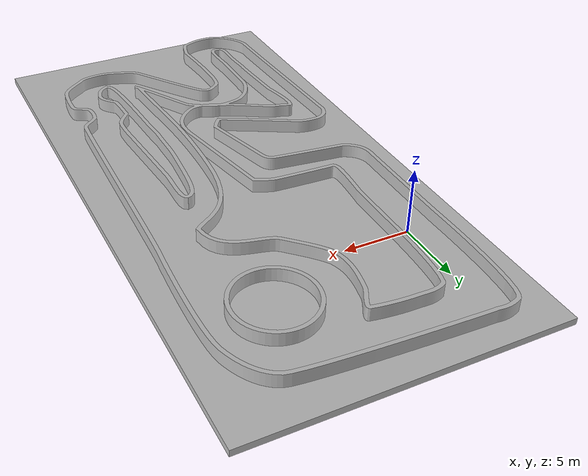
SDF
<?xml version='1.0'?>
<sdf version='1.6'>
  <model name='racetrack_1'>
    <link name='link_0'>
      <inertial>
        <mass>517.5</mass>
        <inertia>
          <ixx>87338.9</ixx>
          <ixy>0</ixy>
          <ixz>0</ixz>
          <iyy>22823.9</iyy>
          <iyz>0</iyz>
          <izz>110141</izz>
        </inertia>
        <pose frame=''>0 0 0 0 -0 0</pose>
      </inertial>
      <pose frame=''>0 0 0 0 -0 0</pose>
      <gravity>1</gravity>
      <self_collide>0</self_collide>
      <kinematic>0</kinematic>
      <enable_wind>0</enable_wind>
      <visual name='visual'>
        <pose frame=''>0 0 0 0 -0 0</pose>
        <geometry>
          <mesh>
            <uri>racetrack_1/meshes/base_link.dae</uri>
            <scale>1 1 1</scale>
          </mesh>
        </geometry>
        <transparency>0</transparency>
        <cast_shadows>1</cast_shadows>
      </visual>
      <collision name='collision'>
        <laser_retro>0</laser_retro>
        <max_contacts>10</max_contacts>
        <pose frame=''>0 0 0 0 -0 0</pose>
        <geometry>
          <mesh>
            <uri>racetrack_1/meshes/base_link.dae</uri>
            <scale>1 1 1</scale>
          </mesh>
        </geometry>
        <surface>
          <friction>
            <ode>
              <mu>1</mu>
              <mu2>1</mu2>
              <fdir1>0 0 0</fdir1>
              <slip1>0</slip1>
              <slip2>0</slip2>
            </ode>
            <torsional>
              <coefficient>1</coefficient>
              <patch_radius>0</patch_radius>
              <surface_radius>0</surface_radius>
              <use_patch_radius>1</use_patch_radius>
              <ode>
                <slip>0</slip>
              </ode>
            </torsional>
          </friction>
          <bounce>
            <restitution_coefficient>0</restitution_coefficient>
            <threshold>1e+06</threshold>
          </bounce>
          <contact>
            <collide_without_contact>0</collide_without_contact>
            <collide_without_contact_bitmask>1</collide_without_contact_bitmask>
            <collide_bitmask>1</collide_bitmask>
            <ode>
              <soft_cfm>0</soft_cfm>
              <soft_erp>0.2</soft_erp>
              <kp>1e+13</kp>
              <kd>1</kd>
              <max_vel>0.01</max_vel>
              <min_depth>0</min_depth>
            </ode>
            <bullet>
              <split_impulse>1</split_impulse>
              <split_impulse_penetration_threshold>-0.01</split_impulse_penetration_threshold>
              <soft_cfm>0</soft_cfm>
              <soft_erp>0.2</soft_erp>
              <kp>1e+13</kp>
              <kd>1</kd>
            </bullet>
          </contact>
        </surface>
      </collision>
    </link>
    <link name='link_1'>
      <inertial>
        <mass>93.3576</mass>
        <inertia>
          <ixx>13110</ixx>
          <ixy>394.898</ixy>
          <ixz>0.00527</ixz>
          <iyy>3259.47</iyy>
          <iyz>0</iyz>
          <izz>16354</izz>
        </inertia>
        <pose frame=''>0 0 0 0 -0 0</pose>
      </inertial>
      <pose frame=''>0 0 0 0 -0 0</pose>
      <gravity>1</gravity>
      <self_collide>0</self_collide>
      <kinematic>0</kinematic>
      <enable_wind>0</enable_wind>
      <visual name='visual'>
        <pose frame=''>0 0 0 0 -0 0</pose>
        <geometry>
          <mesh>
            <uri>racetrack_1/meshes/wall_link.stl</uri>
            <scale>1 1 1</scale>
          </mesh>
        </geometry>
        <transparency>0</transparency>
        <cast_shadows>1</cast_shadows>
      </visual>
      <collision name='collision'>
        <laser_retro>0</laser_retro>
        <max_contacts>10</max_contacts>
        <pose frame=''>0 0 0 0 -0 0</pose>
        <geometry>
          <mesh>
            <uri>racetrack_1/meshes/wall_link.stl</uri>
            <scale>1 1 1</scale>
          </mesh>
        </geometry>
        <surface>
          <friction>
            <ode>
              <mu>1</mu>
              <mu2>1</mu2>
              <fdir1>0 0 0</fdir1>
              <slip1>0</slip1>
              <slip2>0</slip2>
            </ode>
            <torsional>
              <coefficient>1</coefficient>
              <patch_radius>0</patch_radius>
              <surface_radius>0</surface_radius>
              <use_patch_radius>1</use_patch_radius>
              <ode>
                <slip>0</slip>
              </ode>
            </torsional>
          </friction>
          <bounce>
            <restitution_coefficient>0</restitution_coefficient>
            <threshold>1e+06</threshold>
          </bounce>
          <contact>
            <collide_without_contact>0</collide_without_contact>
            <collide_without_contact_bitmask>1</collide_without_contact_bitmask>
            <collide_bitmask>1</collide_bitmask>
            <ode>
              <soft_cfm>0</soft_cfm>
              <soft_erp>0.2</soft_erp>
              <kp>1e+13</kp>
              <kd>1</kd>
              <max_vel>0.01</max_vel>
              <min_depth>0</min_depth>
            </ode>
            <bullet>
              <split_impulse>1</split_impulse>
              <split_impulse_penetration_threshold>-0.01</split_impulse_penetration_threshold>
              <soft_cfm>0</soft_cfm>
              <soft_erp>0.2</soft_erp>
              <kp>1e+13</kp>
              <kd>1</kd>
            </bullet>
          </contact>
        </surface>
      </collision>
    </link>
    <joint name='base_link_2_wall_link' type='fixed'>
      <parent>link_0</parent>
      <child>link_1</child>
      <pose>0 0 0 0 -0 0</pose>
      <physics>
        <ode>
          <limit>
            <cfm>0</cfm>
            <erp>0.2</erp>
          </limit>
          <suspension>
            <cfm>0</cfm>
            <erp>0.2</erp>
          </suspension>
        </ode>
      </physics>
    </joint>
    <static>0</static>
    <allow_auto_disable>1</allow_auto_disable>
  </model>
</sdf>
